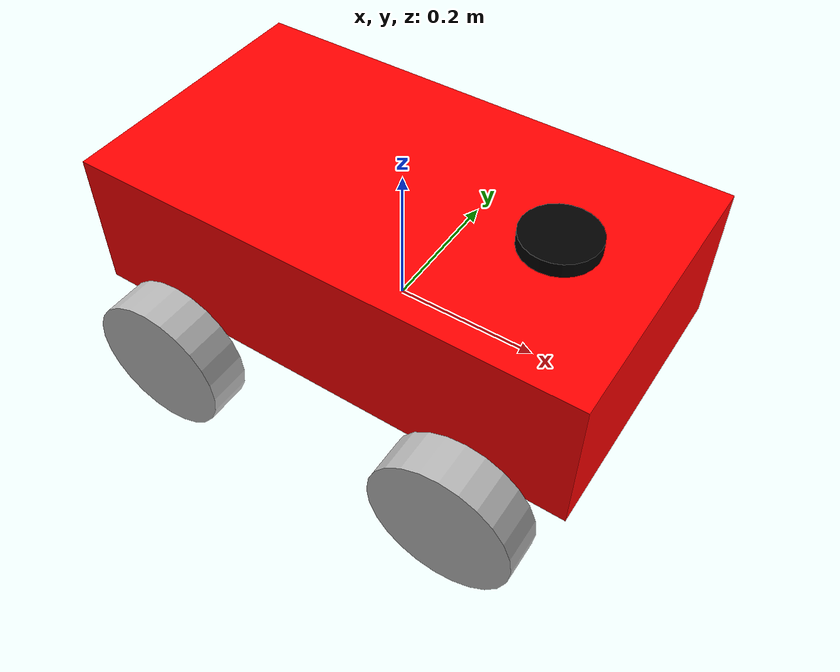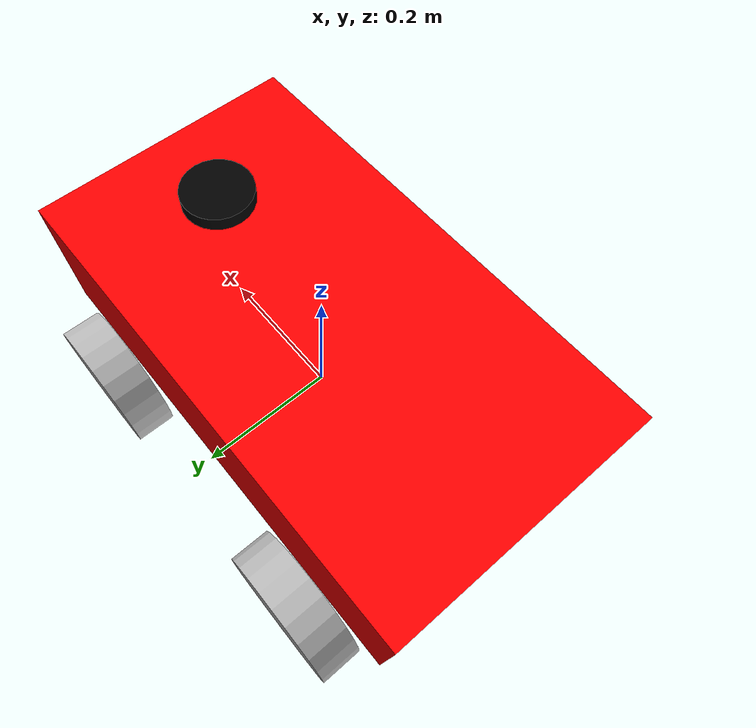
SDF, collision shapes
<?xml version="1.0" ?>
<sdf version="1.5">
  <model name="basic_mobile_bot">
  <static>false</static>

  <!-- ****************** ROBOT BASE FOOTPRINT ***************************  -->
  <pose>0.0 0.0 0.0 0.0 0.0 0.0</pose>
  <link name="base_footprint"/>

  <!-- ********************** ROBOT BASE *********************************  -->
  <link name="base_link">
    <inertial>
        <mass>15</mass>
    </inertial>

    <collision name="base_collision">
      <pose>0 0 0.1 0 0 0</pose>
      <geometry>
        <box>
          <size>0.70 0.39 0.20</size>
        </box>
      </geometry>
    </collision>

    <visual name="base_visual">
      <pose>0 0 -0.05 1.5707963267949 0 3.141592654</pose>
      <geometry>
        <mesh>
          <uri>model://basic_mobile_bot_description/meshes/robot_base.stl</uri>
          <scale>1.0 1.0 1.0</scale>
        </mesh>
      </geometry>
      <material>
        <ambient>1.0 0.0 0.0 1.0</ambient>
        <diffuse>1.0 0.0 0.0 1.0</diffuse>
        <specular>0.0 0.0 0.0 1.0</specular>
        <emissive>0.0 0.0 0.0 1.0</emissive>
      </material>
    </visual>
  </link>

  <!-- *********************** IMU SENSOR SETUP **************************  -->
  <link name="imu_link">
    <gravity>true</gravity>
    <sensor name="bmb_imu" type="imu">
      <always_on>true</always_on>
      <update_rate>100</update_rate>
      <visualize>true</visualize>
      <imu>
        <orientation>
          <x>
            <noise type="gaussian">
              <mean>0.0</mean>
              <stddev>2e-3</stddev>
            </noise>
          </x>
          <y>
            <noise type="gaussian">
              <mean>0.0</mean>
              <stddev>2e-3</stddev>
            </noise>
          </y>
          <z>
            <noise type="gaussian">
              <mean>0.0</mean>
              <stddev>2e-3</stddev>
            </noise>
          </z>
        </orientation>
        <angular_velocity>
          <x>
            <noise type="gaussian">
              <mean>0.0</mean>
              <stddev>2e-4</stddev>
            </noise>
          </x>
          <y>
            <noise type="gaussian">
              <mean>0.0</mean>
              <stddev>2e-4</stddev>
            </noise>
          </y>
          <z>
            <noise type="gaussian">
              <mean>0.0</mean>
              <stddev>2e-4</stddev>
            </noise>
          </z>
        </angular_velocity>
        <linear_acceleration>
          <x>
            <noise type="gaussian">
              <mean>0.0</mean>
              <stddev>1.7e-2</stddev>
            </noise>
          </x>
          <y>
            <noise type="gaussian">
              <mean>0.0</mean>
              <stddev>1.7e-2</stddev>
            </noise>
          </y>
          <z>
            <noise type="gaussian">
              <mean>0.0</mean>
              <stddev>1.7e-2</stddev>
            </noise>
          </z>
        </linear_acceleration>
      </imu>
      <plugin name="basic_mobile_bot_imu" filename="libgazebo_ros_imu_sensor.so">
        <initial_orientation_as_reference>false</initial_orientation_as_reference>
        <frame_name>imu_link</frame_name>
        <ros>
          <namespace>/imu</namespace>
          <remapping>~/out:=data</remapping>
        </ros>
      </plugin>
    </sensor>
  </link>

  <!-- *********************** GPS SETUP *********************************  -->
  <link name="gps_link">
    <sensor name="bmb_gps" type="gps">
      <always_on>true</always_on>
      <update_rate>10.0</update_rate>
      <gps>
        <position_sensing>
          <horizontal>
            <noise type="gaussian">
              <mean>0.0</mean>
              <stddev>1e-2</stddev>
            </noise>
          </horizontal>
          <vertical>
            <noise type="gaussian">
              <mean>0.0</mean>
              <stddev>1</stddev>
            </noise>
          </vertical>
        </position_sensing>
      </gps>
      <plugin name="basic_mobile_bot_gps" filename="libgazebo_ros_gps_sensor.so">
        <ros>
          <remapping>~/out:=gps/fix</remapping>
        </ros>
      </plugin>
    </sensor>
  </link>

  <!-- ****************************** LIDAR *****************************    -->
  <link name="lidar_link">
    <inertial>
      <pose>0.215 0 0.13 0 0 0</pose>
      <inertia>
        <ixx>0.001</ixx>
        <ixy>0.000</ixy>
        <ixz>0.000</ixz>
        <iyy>0.001</iyy>
        <iyz>0.000</iyz>
        <izz>0.001</izz>
      </inertia>
      <mass>0.114</mass>
    </inertial>

    <collision name="lidar_collision">
      <pose>0.215 0 0.13 0 0 0</pose>
      <geometry>
        <cylinder>
          <radius>0.0508</radius>
          <length>0.18</length>
        </cylinder>
      </geometry>
    </collision>

    <visual name="lidar_visual">
      <pose>0.215 0 0.13 0 0 0</pose>
      <geometry>
        <cylinder>
          <radius>0.0508</radius>
          <length>0.18</length>
        </cylinder>
      </geometry>
      <material>
        <ambient>0.0 0.0 0.0 1.0</ambient>
        <diffuse>0.0 0.0 0.0 1.0</diffuse>
        <specular>0.0 0.0 0.0 1.0</specular>
        <emissive>0.0 0.0 0.0 1.0</emissive>
      </material>
    </visual>

    <sensor name="lidar" type="ray">
      <pose>0.215 0 0.215 0 0 0</pose>
      <always_on>true</always_on>
      <visualize>true</visualize>
      <update_rate>5</update_rate>
      <ray>
        <scan>
          <horizontal>
            <samples>120</samples>
            <resolution>1.000000</resolution>
            <min_angle>-3.14159</min_angle>
            <max_angle>3.14159</max_angle>
          </horizontal>
        </scan>
        <range>
          <min>0.3</min>
          <max>15.0</max>
          <resolution>0.015</resolution>
        </range>
        <noise>
          <type>gaussian</type>
          <mean>0.0</mean>
          <stddev>0.01</stddev>
        </noise>
      </ray>
      <plugin name="scan" filename="libgazebo_ros_ray_sensor.so">
        <ros>
          <remapping>~/out:=scan</remapping>
        </ros>
        <output_type>sensor_msgs/LaserScan</output_type>
        <frame_name>lidar_link</frame_name>
      </plugin>
    </sensor>
  </link>

  <!-- *********************** DRIVE WHEELS ******************************  -->
  <link name="drivewhl_rear_l_link">
    <pose>-0.221 0.23 -0.05 0 1.570796 1.570796</pose>
    <inertial>
        <mass>1</mass>
    </inertial>
    <collision name="drivewhl_rear_l_collision">
      <geometry>
        <cylinder>
          <radius>0.10</radius>
          <length>0.06</length>
        </cylinder>
      </geometry>
    </collision>

    <visual name="drivewhl_rear_l_visual">
      <geometry>
        <cylinder>
          <radius>0.10</radius>
          <length>0.06</length>
        </cylinder>
      </geometry>
    </visual>
  </link>

  <link name="drivewhl_rear_r_link">
    <pose>-0.221 -0.23 -0.05 0 1.570796 1.570796</pose>
    <inertial>
        <mass>1</mass>
    </inertial>
    <collision name="drivewhl_rear_r_collision">
      <geometry>
        <cylinder>
          <radius>0.10</radius>
          <length>0.06</length>
        </cylinder>
      </geometry>
    </collision>

    <visual name="drivewhl_rear_r_visual">
      <geometry>
        <cylinder>
          <radius>0.10</radius>
          <length>0.06</length>
        </cylinder>
      </geometry>
    </visual>
  </link>

   <link name="drivewhl_front_l_link">
    <pose>0.221 0.23 -0.05 0 1.570796 1.570796</pose>
    <inertial>
        <mass>1</mass>
    </inertial>
    <collision name="drivewhl_front_l_collision">
      <geometry>
        <cylinder>
          <radius>0.10</radius>
          <length>0.06</length>
        </cylinder>
      </geometry>
    </collision>

    <visual name="drivewhl_front_l_visual">
      <geometry>
        <cylinder>
          <radius>0.10</radius>
          <length>0.06</length>
        </cylinder>
      </geometry>
    </visual>
  </link>

  <link name="drivewhl_front_r_link">
    <pose>0.221 -0.23 -0.05 0 1.570796 1.570796</pose>
    <inertial>
        <mass>1</mass>
    </inertial>
    <collision name="drivewhl_front_r_collision">
      <geometry>
        <cylinder>
          <radius>0.10</radius>
          <length>0.06</length>
        </cylinder>
      </geometry>
    </collision>

    <visual name="drivewhl_front_r_visual">
      <geometry>
        <cylinder>
          <radius>0.10</radius>
          <length>0.06</length>
        </cylinder>
      </geometry>
    </visual>
  </link>

  <!-- ************************ JOINTS ***********************************  -->
  <!-- Pose of the joint is the same as the child link frame -->
  <!-- Axis is the axis of rotation relative to the child link frame -->

  <joint name="base_joint" type="fixed">
    <parent>base_footprint</parent>
    <child>base_link</child>
    <pose>0 0 0 0 0 0</pose>
  </joint>

  <joint name="drivewhl_rear_l_joint" type="revolute">
    <parent>base_link</parent>
    <child>drivewhl_rear_l_link</child>
    <pose>0 0 0 0 0 0</pose>
    <axis>
      <xyz>0 0 1</xyz>
       <dynamics>
        <spring_reference>0</spring_reference>
        <spring_stiffness>0</spring_stiffness>
        <damping>0.5</damping>
        <friction>0</friction>
      </dynamics>
    </axis>
  </joint>

  <joint name="drivewhl_rear_r_joint" type="revolute">
    <parent>base_link</parent>
    <child>drivewhl_rear_r_link</child>
    <pose>0 0 0 0 0 0</pose>
    <axis>
      <xyz>0 0 1</xyz>
      <dynamics>
        <spring_reference>0</spring_reference>
        <spring_stiffness>0</spring_stiffness>
        <damping>0.5</damping>
        <friction>0</friction>
      </dynamics>
    </axis>
  </joint>

  <joint name="drivewhl_front_l_joint" type="revolute">
    <parent>base_link</parent>
    <child>drivewhl_front_l_link</child>
    <pose>0 0 0 0 0 0</pose>
    <axis>
      <xyz>0 0 1</xyz>
      <dynamics>
        <spring_reference>0</spring_reference>
        <spring_stiffness>0</spring_stiffness>
        <damping>0.5</damping>
        <friction>0</friction>
      </dynamics>
    </axis>
  </joint>

  <joint name="drivewhl_front_r_joint" type="revolute">
    <parent>base_link</parent>
    <child>drivewhl_front_r_link</child>
    <pose>0 0 0 0 0 0</pose>
    <axis>
      <xyz>0 0 1</xyz>
      <dynamics>
        <spring_reference>0</spring_reference>
        <spring_stiffness>0</spring_stiffness>
        <damping>0.5</damping>
        <friction>0</friction>
      </dynamics>
    </axis>
  </joint>

  <joint name="imu_joint" type="fixed">
    <parent>base_link</parent>
    <child>imu_link</child>
    <pose>0 0 0 0 0 0</pose>
  </joint>

  <joint name="gps_joint" type="fixed">
    <parent>base_link</parent>
    <child>gps_link</child>
    <pose>0 0 0 0 0 0</pose>
  </joint>

  <joint name="lidar_joint" type="fixed">
    <parent>base_link</parent>
    <child>lidar_link</child>
    <pose>0 0 0 0 0 0</pose>
  </joint>

 <!-- *********************** WHEEL ODOMETRY ***************************    -->
  <plugin name="basic_mobile_bot_diff_drive" filename="libgazebo_ros_diff_drive.so">

    <update_rate>30</update_rate>

    <!-- wheels -->
    <num_wheel_pairs>2</num_wheel_pairs>
    <left_joint>drivewhl_rear_l_joint</left_joint>
    <left_joint>drivewhl_front_l_joint</left_joint>
    <right_joint>drivewhl_rear_r_joint</right_joint>
    <right_joint>drivewhl_front_r_joint</right_joint>

    <!-- kinematics -->
    <wheel_separation>0.52</wheel_separation>
    <wheel_diameter>0.20</wheel_diameter>

    <!-- limits -->
    <max_wheel_torque>20</max_wheel_torque>
    <max_wheel_acceleration>1.0</max_wheel_acceleration>

    <!-- Receive velocity commands on this ROS topic -->
    <command_topic>cmd_vel</command_topic>

    <!-- output -->
    <!-- When false, publish no wheel odometry data to a ROS topic -->
    <publish_odom>true</publish_odom>

    <!-- When true, publish coordinate transform from odom to base_footprint -->
    <!-- I usually use the robot_localization package to publish this transform -->
    <publish_odom_tf>false</publish_odom_tf>

    <!-- When true, publish coordinate transform from base_link to the wheels -->
    <!-- The robot_state_publisher package is often used to publish this transform -->
    <publish_wheel_tf>false</publish_wheel_tf>

    <odometry_topic>odom</odometry_topic>
    <odometry_frame>odom</odometry_frame>
    <robot_base_frame>base_footprint</robot_base_frame>

    <!-- Odometry source, 0 for ENCODER, 1 for WORLD, defaults to WORLD -->
    <odometry_source>1</odometry_source>

    <!-- Change the ROS topic we will publish the odometry data to -->
    <ros>
      <remapping>odom:=wheel/odometry</remapping>
    </ros>

  </plugin>

 <!-- *********************** JOINT STATE PUBLISHER *********************   -->

  <plugin name="basic_mobile_bot_joint_state" filename="libgazebo_ros_joint_state_publisher.so">
    <ros>
      <remapping>~/out:=joint_states</remapping>
    </ros>
    <update_rate>30</update_rate>
    <joint_name>drivewhl_rear_l_joint</joint_name>
    <joint_name>drivewhl_rear_r_joint</joint_name>
    <joint_name>drivewhl_front_l_joint</joint_name>
    <joint_name>drivewhl_front_r_joint</joint_name>
  </plugin>

  </model>
</sdf>
